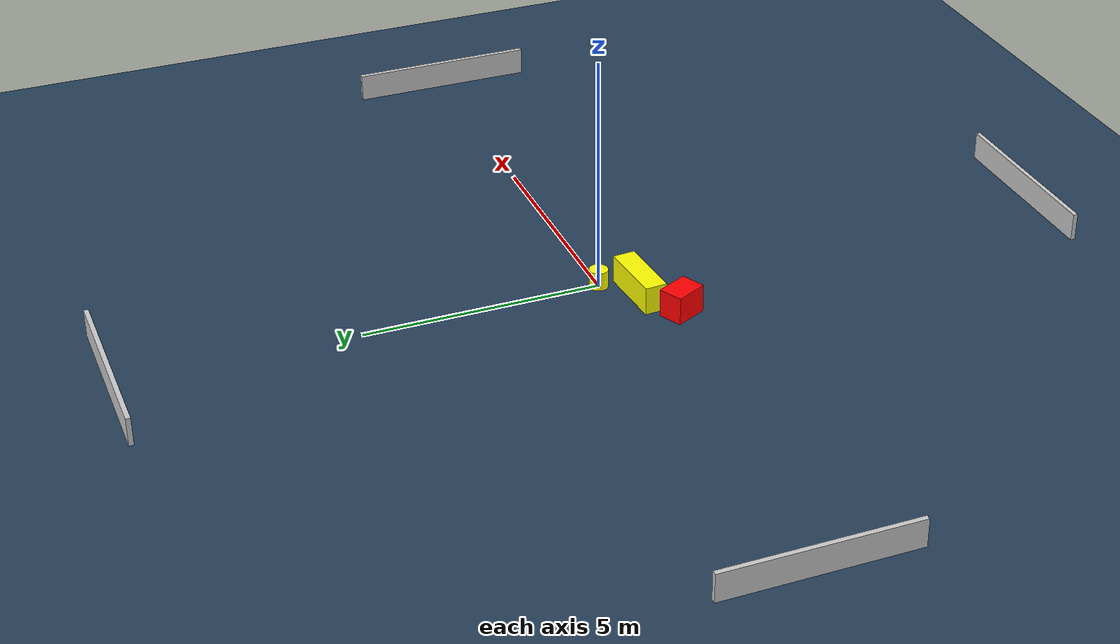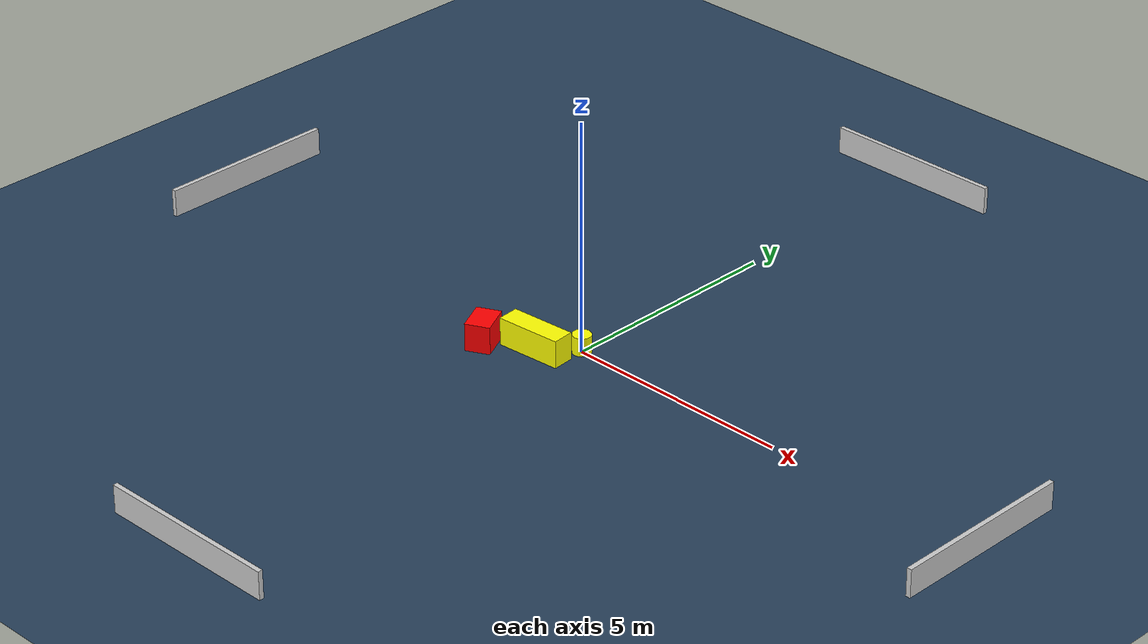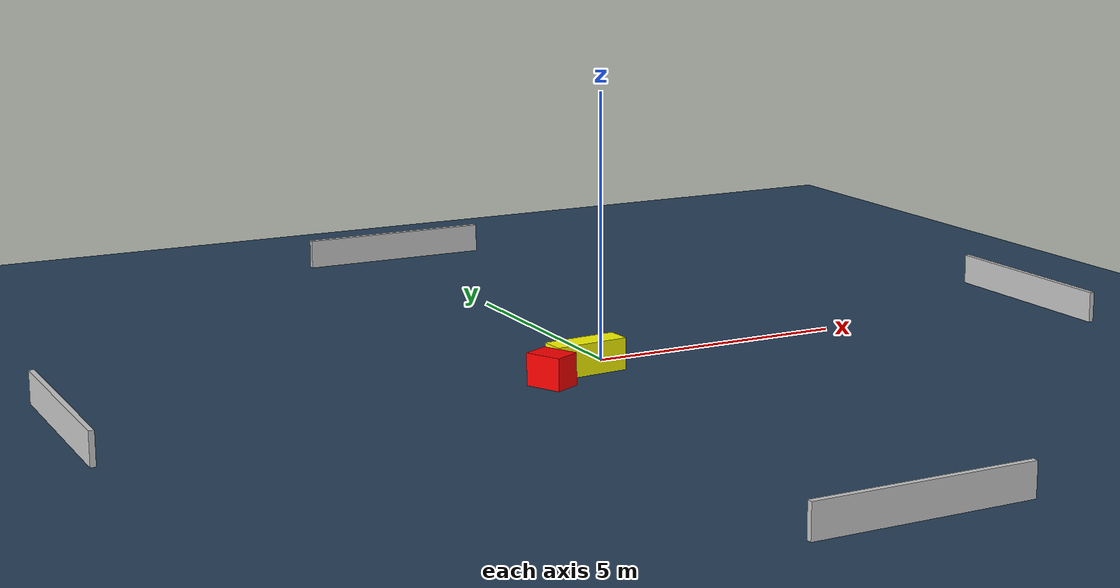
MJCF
<?xml version="1.0" ?>
<mujoco model="generated_environment">
  <option timestep="0.01" integrator="RK4" cone="elliptic"/>
  <default>
    <geom density="1"/>
  </default>
  <asset>
    <texture builtin="gradient" height="3072" name="skybox" rgb1="0.3 0.5 0.7" rgb2="0 0 0" type="skybox" width="512"/>
    <texture builtin="checker" height="300" name="groundplane" rgb1="0.2 0.3 0.4" rgb2="0.1 0.2 0.3" type="2d" width="300"/>
    <material name="groundplane" reflectance="0.2" texrepeat="5 5" texture="groundplane"/>
  </asset>
  <worldbody>
    <light dir="0 0 -1" directional="true" pos="0 0 1.5"/>
    <geom condim="3" friction="0.5 0.005 0.001" material="groundplane" name="floor" pos="0 0 0" size="0 0 0.05" type="plane"/>
    <body name="walls">
      <geom name="wall_1" condim="4" pos="-10.0 0.0 0.3" rgba="0.800000011920929 0.800000011920929 0.800000011920929 1.0" size="0.05 2.0 0.3" type="box"/>
      <geom name="wall_2" condim="4" pos="10.0 0.0 0.3" rgba="0.800000011920929 0.800000011920929 0.800000011920929 1.0" size="0.05 2.0 0.3" type="box"/>
      <geom name="wall_3" condim="4" pos="0.0 -10.0 0.3" rgba="0.800000011920929 0.800000011920929 0.800000011920929 1.0" size="2.0 0.05 0.3" type="box"/>
      <geom name="wall_4" condim="4" pos="0.0 10.0 0.3" rgba="0.800000011920929 0.800000011920929 0.800000011920929 1.0" size="2.0 0.05 0.3" type="box"/>
    </body>
    <body name="robot">
      <joint name="joint_x" type="slide" pos="0 0 0" axis="1 0 0"/>
      <joint name="joint_y" type="slide" pos="0 0 0" axis="0 1 0"/>
      <geom name="robot" type="cylinder" pos="0.0 0.0 0.2" size="0.2 0.2 0.0" mass="5.0" friction="1.0 0.005 0.0001" condim="4" rgba="1.0 1.0 0.0 1.0"/>
    </body>
    <body name="obstacle_1_movable">
      <geom name="obstacle_1_movable" condim="4" pos="-0.6479288894942296 -0.6357855405857947 0.3" euler="0 0 94.3829998176516" friction="0.0 0.005 0.001" rgba="1.0 1.0 0.0 1.0" size="0.23555254510680507 0.7148788409002966 0.3" type="box" mass="0.1"/>
      <joint type="free"/>
    </body>
    <body name="obstacle_2_static">
      <geom name="obstacle_2_static" condim="4" pos="-1.5897213932952898 -1.1411911418716316 0.3" euler="0 0 26.293955857642306" friction="0.0 0.005 0.001" rgba="1.0 0.0 0.0 1.0" size="0.26459330113764423 0.3562145220719388 0.3" type="box"/>
    </body>
  </worldbody>
  <actuator>
    <motor name="actuator_x" joint="joint_x" gear="1" ctrlrange="-1 1"/>
    <motor name="actuator_y" joint="joint_y" gear="1" ctrlrange="-1 1"/>
  </actuator>
</mujoco>
